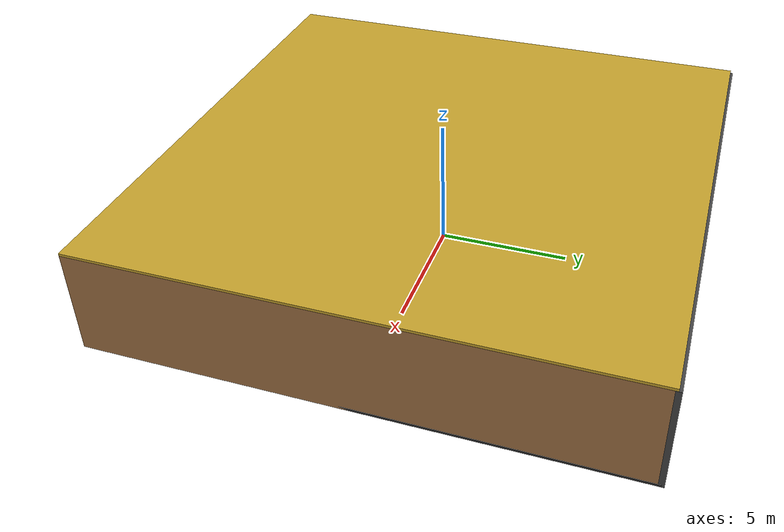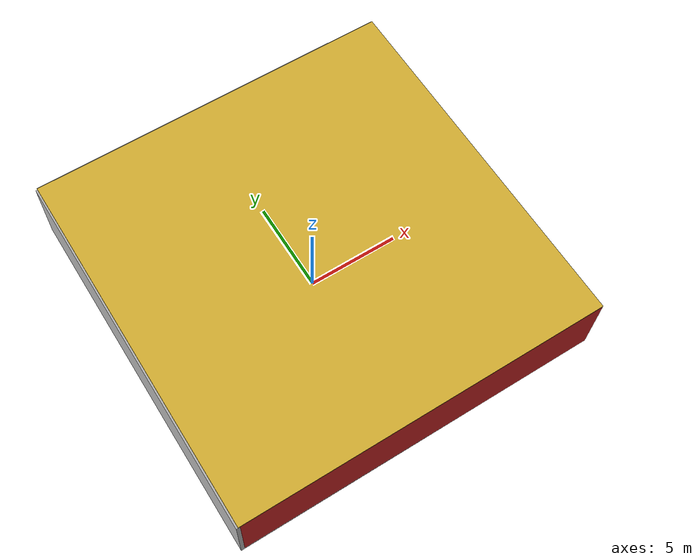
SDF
<sdf version="1.4">
 <world name="default">
  <physics type="ode">
   <max_step_size>0.001</max_step_size>
   <real_time_factor>1</real_time_factor>
   <real_time_update_rate>1000</real_time_update_rate>
   <gravity>0 0 -9.8</gravity>
  </physics>
  <scene><ambient>0.4 0.4 0.4 1</ambient><background>0.7 0.7 0.7 1</background><shadows>1</shadows></scene>
  <model name="Surrounding">
   <static>1</static>
   <link name="Ceiling">
    <collision name="Ceiling_Collision"><geometry><box><size>20 20 0.1</size></box></geometry></collision>
    <visual name="Ceiling_Visual">
     <geometry><box><size>20 20 0.1</size></box></geometry>
     <material>
      <script><uri>file://media/materials/scripts/gazebo.material</uri><name>Gazebo/Gold</name></script>
     </material>
    </visual>
    <pose>0 0 4.05 0 0 0</pose>
   </link>
   <link name="Wall_South">
    <collision name="Wall_South_Collision">
     <geometry><box><size>20 0 4</size></box></geometry>
     <pose>0 0 2 0 -0 0</pose>
    </collision>
    <visual name="Wall_South_Visual">
     <pose>0 0 2 0 -0 0</pose>
     <geometry><box><size>20 0 4</size></box></geometry>
     <material>
      <script><uri>file://media/materials/scripts/gazebo.material</uri><name>Gazebo/Red</name></script>
     </material>
    </visual>
    <velocity_decay><linear>0</linear><angular>0</angular></velocity_decay>
    <pose>0 -10 0 0 -0 0</pose>
   </link>
   <link name="Wall_East">
    <collision name="Wall_21_Collision">
     <geometry><box><size>20 0 4</size></box></geometry>
     <pose>0 0 2 0 -0 0</pose>
    </collision>
    <visual name="Wall_21_Visual">
     <pose>0 0 2 0 -0 0</pose>
     <geometry><box><size>20 0 4</size></box></geometry>
     <material>
      <script><uri>file://media/materials/scripts/gazebo.material</uri><name>Gazebo/WoodPallet</name></script>
     </material>
    </visual>
    <velocity_decay><linear>0</linear><angular>0</angular></velocity_decay>
    <pose>10 0 0 0 -0 1.5708</pose>
   </link>
   <link name="Wall_North">
    <collision name="Wall_22_Collision">
     <geometry><box><size>20 0.2 4</size></box></geometry>
     <pose>0 0 2 0 -0 0</pose>
    </collision>
    <visual name="Wall_22_Visual">
     <pose>0 0 2 0 -0 0</pose>
     <geometry><box><size>20 0.2 4</size></box></geometry>
     <material>
      <script><uri>file://media/materials/scripts/gazebo.material</uri><name>Gazebo/DarkGrey</name></script>
     </material>
    </visual>
    <velocity_decay><linear>0</linear><angular>0</angular></velocity_decay>
    <pose>0 10 0 0 -0 0</pose>
   </link>
   <link name="Wall_West">
    <collision name="Wall_23_Collision">
     <geometry><box><size>20 0.2 4</size></box></geometry>
     <pose>0 0 2 0 -0 0</pose>
    </collision>
    <visual name="Wall_23_Visual">
     <pose>0 0 2 0 -0 0</pose>
     <geometry><box><size>20 0.2 4</size></box></geometry>
     <material>
      <script><uri>file://media/materials/scripts/gazebo.material</uri><name>Gazebo/LightOn</name></script>
     </material>
    </visual>
    <velocity_decay><linear>0</linear><angular>0</angular></velocity_decay>
    <pose>-10 0 0 0 0 -1.5708</pose>
   </link>
   <link name="Ground_link">
    <collision name="collision">
     <pose>0 0 .05 0 -0 0</pose>
     <geometry><box><size>20 20 0.1</size></box></geometry>
    </collision>
    <visual name="visual">
     <pose>0 0 .05 0 -0 0</pose>
     <geometry><box><size>20 20 0.1</size></box></geometry>
     <material>
      <script><uri>file://media/materials/scripts/gazebo.material</uri><name>Gazebo/FlatBlack</name></script>
     </material>
    </visual>
   </link>
   <static>1</static>
  </model>
  <spherical_coordinates>
   <surface_model>EARTH_WGS84</surface_model>
   <latitude_deg>0</latitude_deg>
   <longitude_deg>0</longitude_deg>
   <elevation>0</elevation>
   <heading_deg>0</heading_deg>
  </spherical_coordinates>
  <light name="lightball_0" type="diffuse">
   <diffuse>0.8 0.8 0.8 1</diffuse>
   <specular>0.2 0.2 0.2 1</specular>
   <attenuation>
    <range>100</range>
    <constant>0.7</constant>
    <linear>0.01</linear>
    <quadratic>0.001</quadratic>
   </attenuation>
   <direction>-0.5 0.1 -0.9</direction>
   <pose>-1.69911680762 1.40106821838 1.02964272838 0 0 0</pose>
  </light>
  <light name="lightball_1" type="diffuse">
   <diffuse>0.8 0.8 0.8 1</diffuse>
   <specular>0.2 0.2 0.2 1</specular>
   <attenuation>
    <range>100</range>
    <constant>0.7</constant>
    <linear>0.01</linear>
    <quadratic>0.001</quadratic>
   </attenuation>
   <direction>-0.5 0.1 -0.9</direction>
   <pose>9.65798864196 -5.66195524673 0.565607119742 0 0 0</pose>
  </light>
  <light name="lightball_2" type="diffuse">
   <diffuse>0.8 0.8 0.8 1</diffuse>
   <specular>0.2 0.2 0.2 1</specular>
   <attenuation>
    <range>100</range>
    <constant>0.7</constant>
    <linear>0.01</linear>
    <quadratic>0.001</quadratic>
   </attenuation>
   <direction>-0.5 0.1 -0.9</direction>
   <pose>-1.33985589037 8.98447237921 1.95055893496 0 0 0</pose>
  </light>
  <include><uri>model://cabinet</uri><pose>-4.76279744454 -3.56784595902 0 0 0 2.01468131863</pose></include>
  <include><uri>model://table</uri><pose>-0.620803932877 -4.6316286183 0 0 0 1.57014227705</pose></include>
  <include><uri>model://cabinet</uri><pose>-1.90712259639 2.63095738137 0 0 0 3.05183423099</pose></include>
  <include>
   <uri>model://robocup_3Dsim_goal</uri>
   <pose>-0.962910864199 6.71211442064 0 0 0 0.0536711460529</pose>
  </include>
  <include>
   <uri>model://robocup_3Dsim_goal</uri>
   <pose>6.47516748582 -4.34436091508 0 0 0 2.78566576197</pose>
  </include>
  <include><uri>model://cabinet</uri><pose>6.45842934574 0.504833865547 0 0 0 2.3820741802</pose></include>
 </world>
</sdf>

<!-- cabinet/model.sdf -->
<sdf version="1.5">
  <model name="cabinet">
    <static>true</static>
    <link name="cabinet_bottom_plate">
      <inertial>
        <pose>0 0 -1 0 0 0</pose>
        <inertia>
          <ixx>2.050000</ixx>
          <ixy>0</ixy>
          <ixz>0</ixz>
          <iyy>2.050000</iyy>
          <iyz>0</iyz>
          <izz>2.050000</izz>
        </inertia>
        <mass>25.000000</mass>
      </inertial>
      <collision name="cabinet_bottom_plate_geom">
        <pose>0 0 0.010000 0 0 0</pose>
        <geometry>
          <box>
            <size>0.450000 0.450000 0.020000</size>
          </box>
        </geometry>
      </collision>
      <visual name="cabinet_bottom_plate_geom_visual">
        <pose>0 0 0.010000 0 0 0</pose>
        <geometry>
          <box>
            <size>0.450000 0.450000 0.020000</size>
          </box>
        </geometry>
        <material>
          <script>
            <uri>model://media/materials/scripts/gazebo.material</uri>
            <name>Gazebo/Wood</name>
          </script>
        </material>
      </visual>
      <collision name="cabinet_bottom_plate_geom_cabinet_back_plate">
        <pose>0.235000 0 0.510000 0 0 0</pose>
        <geometry>
          <box>
            <size>0.020000 0.450000 1.020000</size>
          </box>
        </geometry>
      </collision>
      <visual name="cabinet_bottom_plate_geom_cabinet_back_plate_visual">
        <pose>0.235000 0 0.510000 0 0 0</pose>
        <geometry>
          <box>
            <size>0.020000 0.450000 1.020000</size>
          </box>
        </geometry>
        <material>
          <script>
            <uri>model://media/materials/scripts/gazebo.material</uri>
            <name>Gazebo/Wood</name>
          </script>
        </material>
      </visual>
      <collision name="cabinet_bottom_plate_geom_cabinet_left_plate">
        <pose>0 0.235000 0.510000 0 0 0</pose>
        <geometry>
          <box>
            <size>0.450000 0.020000 1.020000</size>
          </box>
        </geometry>
      </collision>
      <visual name="cabinet_bottom_plate_geom_cabinet_left_plate_visual">
        <pose>0 0.235000 0.510000 0 0 0</pose>
        <geometry>
          <box>
            <size>0.450000 0.020000 1.020000</size>
          </box>
        </geometry>
        <material>
          <script>
            <uri>model://media/materials/scripts/gazebo.material</uri>
            <name>Gazebo/Wood</name>
          </script>
        </material>
      </visual>
      <collision name="cabinet_bottom_plate_geom_cabinet_middle_plate">
        <pose>0 0 0.510000 0 0 0</pose>
        <geometry>
          <box>
            <size>0.450000 0.450000 0.020000</size>
          </box>
        </geometry>
      </collision>
      <visual name="cabinet_bottom_plate_geom_cabinet_middle_plate_visual">
        <pose>0 0 0.510000 0 0 0</pose>
        <geometry>
          <box>
            <size>0.450000 0.450000 0.020000</size>
          </box>
        </geometry>
        <material>
          <script>
            <uri>model://media/materials/scripts/gazebo.material</uri>
            <name>Gazebo/Wood</name>
          </script>
        </material>
      </visual>
      <collision name="cabinet_bottom_plate_geom_cabinet_right_plate">
        <pose>0 -0.235000 0.510000 0 0 0</pose>
        <geometry>
          <box>
            <size>0.450000 0.020000 1.020000</size>
          </box>
        </geometry>
      </collision>
      <visual name="cabinet_bottom_plate_geom_cabinet_right_plate_visual">
        <pose>0 -0.235000 0.510000 0 0 0</pose>
        <geometry>
          <box>
            <size>0.450000 0.020000 1.020000</size>
          </box>
        </geometry>
        <material>
          <script>
            <uri>model://media/materials/scripts/gazebo.material</uri>
            <name>Gazebo/Wood</name>
          </script>
        </material>
      </visual>
      <collision name="cabinet_bottom_plate_geom_cabinet_top_plate">
        <pose>0 0 1.010000 0 0 0</pose>
        <geometry>
          <box>
            <size>0.450000 0.450000 0.020000</size>
          </box>
        </geometry>
      </collision>
      <visual name="cabinet_bottom_plate_geom_cabinet_top_plate_visual">
        <pose>0 0 1.010000 0 0 0</pose>
        <geometry>
          <box>
            <size>0.450000 0.450000 0.020000</size>
          </box>
        </geometry>
        <material>
          <script>
            <uri>model://media/materials/scripts/gazebo.material</uri>
            <name>Gazebo/Wood</name>
          </script>
        </material>
      </visual>
    </link>
  </model>
</sdf>

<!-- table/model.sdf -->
<sdf version="1.5">
  <model name="table">
    <static>true</static>
    <link name="link">
      <collision name="surface">
        <pose>0 0 1.0 0 0 0</pose>
        <geometry>
          <box>
            <size>1.5 0.8 0.03</size>
          </box>
        </geometry>
        <surface>
          <friction>
            <ode>
              <mu>0.6</mu>
              <mu2>0.6</mu2>
            </ode>
          </friction>
        </surface>
      </collision>
      <visual name="visual1">
        <pose>0 0 1.0 0 0 0</pose>
        <geometry>
          <box>
            <size>1.5 0.8 0.03</size>
          </box>
        </geometry>
        <material>
          <script>
            <uri>model://media/materials/scripts/gazebo.material</uri>
            <name>Gazebo/Wood</name>
          </script>
        </material>
      </visual>
      <collision name="front_left_leg">
        <pose>0.68 0.38 0.5 0 0 0</pose>
        <geometry>
          <cylinder>
            <radius>0.02</radius>
            <length>1.0</length>
          </cylinder>
        </geometry>
      </collision>
      <visual name="front_left_leg">
        <pose>0.68 0.38 0.5 0 0 0</pose>
        <geometry>
          <cylinder>
            <radius>0.02</radius>
            <length>1.0</length>
          </cylinder>
        </geometry>
        <material>
          <script>
            <uri>model://media/materials/scripts/gazebo.material</uri>
            <name>Gazebo/Grey</name>
          </script>
        </material>
      </visual>
      <collision name="front_right_leg">
        <pose>0.68 -0.38 0.5 0 0 0</pose>
        <geometry>
          <cylinder>
            <radius>0.02</radius>
            <length>1.0</length>
          </cylinder>
        </geometry>
      </collision>
      <visual name="front_right_leg">
        <pose>0.68 -0.38 0.5 0 0 0</pose>
        <geometry>
          <cylinder>
            <radius>0.02</radius>
            <length>1.0</length>
          </cylinder>
        </geometry>
        <material>
          <script>
            <uri>model://media/materials/scripts/gazebo.material</uri>
            <name>Gazebo/Grey</name>
          </script>
        </material>
      </visual>
      <collision name="back_right_leg">
        <pose>-0.68 -0.38 0.5 0 0 0</pose>
        <geometry>
          <cylinder>
            <radius>0.02</radius>
            <length>1.0</length>
          </cylinder>
        </geometry>
      </collision>
      <visual name="back_right_leg">
        <pose>-0.68 -0.38 0.5 0 0 0</pose>
        <geometry>
          <cylinder>
            <radius>0.02</radius>
            <length>1.0</length>
          </cylinder>
        </geometry>
        <material>
          <script>
            <uri>model://media/materials/scripts/gazebo.material</uri>
            <name>Gazebo/Grey</name>
          </script>
        </material>
      </visual>
      <collision name="back_left_leg">
        <pose>-0.68 0.38 0.5 0 0 0</pose>
        <geometry>
          <cylinder>
            <radius>0.02</radius>
            <length>1.0</length>
          </cylinder>
        </geometry>
      </collision>
      <visual name="back_left_leg">
        <pose>-0.68 0.38 0.5 0 0 0</pose>
        <geometry>
          <cylinder>
            <radius>0.02</radius>
            <length>1.0</length>
          </cylinder>
        </geometry>
        <material>
          <script>
            <uri>model://media/materials/scripts/gazebo.material</uri>
            <name>Gazebo/Grey</name>
          </script>
        </material>
      </visual>
    </link>
  </model>
</sdf>

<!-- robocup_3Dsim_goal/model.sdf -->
<sdf version="1.5">
  <model name="robocup_3d_goal">
    <static>true</static>
    <link name="left_post">
      <pose>0 1.05 0.45 0 0 0</pose>
      <collision name="collision">
        <geometry>
          <cylinder>
            <radius>0.05</radius>
            <length>0.9</length>
          </cylinder>
        </geometry>
      </collision>
      <visual name="visual">
        <geometry>
          <cylinder>
            <radius>0.05</radius>
            <length>0.9</length>
          </cylinder>
        </geometry>
        <material>
          <script>
            <uri>file://media/materials/scripts/gazebo.material</uri>
            <name>Gazebo/ZincYellow</name>
          </script>
        </material>
      </visual>
    </link>
    <link name="left_support_horiz_lower">
      <pose>0.30 1.05 0.01 0 0 0</pose>
      <collision name="collision">
        <geometry>
          <box>
            <size>0.50 0.02 0.02</size>
          </box>
        </geometry>
      </collision>
      <visual name="visual">
        <geometry>
          <box>
            <size>0.50 0.02 0.02</size>
          </box>
        </geometry>
        <material>
          <script>
            <uri>file://media/materials/scripts/gazebo.material</uri>
            <name>Gazebo/White</name>
          </script>
        </material>
      </visual>
    </link>
    <link name="left_support_horiz_upper">
      <pose>0.30 1.05 0.79 0 0 0</pose>
      <collision name="collision">
        <geometry>
          <box>
            <size>0.50 0.02 0.02</size>
          </box>
        </geometry>
      </collision>
      <visual name="visual">
        <geometry>
          <box>
            <size>0.50 0.02 0.02</size>
          </box>
        </geometry>
        <material>
          <script>
            <uri>file://media/materials/scripts/gazebo.material</uri>
            <name>Gazebo/White</name>
          </script>
        </material>
      </visual>
    </link>
    <link name="left_support_vertical">
      <pose>0.56 1.05 0.4 0 1.5708 0</pose>
      <collision name="collision">
        <geometry>
          <box>
            <size>0.80 0.02 0.02</size>
          </box>
        </geometry>
      </collision>
      <visual name="visual">
        <geometry>
          <box>
            <size>0.80 0.02 0.02</size>
          </box>
        </geometry>
        <material>
          <script>
            <uri>file://media/materials/scripts/gazebo.material</uri>
            <name>Gazebo/White</name>
          </script>
        </material>
      </visual>
    </link>
    <link name="right_support_horiz_lower">
      <pose>0.30 -1.05 0.01 0 0 0</pose>
      <collision name="collision">
        <geometry>
          <box>
            <size>0.50 0.02 0.02</size>
          </box>
        </geometry>
      </collision>
      <visual name="visual">
        <geometry>
          <box>
            <size>0.50 0.02 0.02</size>
          </box>
        </geometry>
        <material>
          <script>
            <uri>file://media/materials/scripts/gazebo.material</uri>
            <name>Gazebo/White</name>
          </script>
        </material>
      </visual>
    </link>
    <link name="right_support_horiz_upper">
      <pose>0.30 -1.05 0.79 0 0 0</pose>
      <collision name="collision">
        <geometry>
          <box>
            <size>0.50 0.02 0.02</size>
          </box>
        </geometry>
      </collision>
      <visual name="visual">
        <geometry>
          <box>
            <size>0.50 0.02 0.02</size>
          </box>
        </geometry>
        <material>
          <script>
            <uri>file://media/materials/scripts/gazebo.material</uri>
            <name>Gazebo/White</name>
          </script>
        </material>
      </visual>
    </link>
    <link name="right_support_vertical">
      <pose>0.56 -1.05 0.4 0 1.5708 0</pose>
      <collision name="collision">
        <geometry>
          <box>
            <size>0.80 0.02 0.02</size>
          </box>
        </geometry>
      </collision>
      <visual name="visual">
        <geometry>
          <box>
            <size>0.80 0.02 0.02</size>
          </box>
        </geometry>
        <material>
          <script>
            <uri>file://media/materials/scripts/gazebo.material</uri>
            <name>Gazebo/White</name>
          </script>
        </material>
      </visual>
    </link>
    <link name="center_support_horiz_lower">
      <pose>0.56 0 0.01 0 1.5708 0</pose>
      <collision name="collision">
        <geometry>
          <box>
            <size>0.02 2.08 0.02</size>
          </box>
        </geometry>
      </collision>
      <visual name="visual">
        <geometry>
          <box>
            <size>0.02 2.08 0.02</size>
          </box>
        </geometry>
        <material>
          <script>
            <uri>file://media/materials/scripts/gazebo.material</uri>
            <name>Gazebo/White</name>
          </script>
        </material>
      </visual>
    </link>
    <link name="center_support_horiz_upper">
      <pose>0.56 0 0.79 0 1.5708 0</pose>
      <collision name="collision">
        <geometry>
          <box>
            <size>0.02 2.08 0.02</size>
          </box>
        </geometry>
      </collision>
      <visual name="visual">
        <geometry>
          <box>
            <size>0.02 2.08 0.02</size>
          </box>
        </geometry>
        <material>
          <script>
            <uri>file://media/materials/scripts/gazebo.material</uri>
            <name>Gazebo/White</name>
          </script>
        </material>
      </visual>
    </link>
    <link name="right_post">
      <pose>0 -1.05 0.45 0 0 0</pose>
      <collision name="collision">
        <geometry>
          <cylinder>
            <radius>0.05</radius>
            <length>0.9</length>
          </cylinder>
        </geometry>
      </collision>
      <visual name="visual">
        <geometry>
          <cylinder>
            <radius>0.05</radius>
            <length>0.9</length>
          </cylinder>
        </geometry>
        <material>
          <script>
            <uri>file://media/materials/scripts/gazebo.material</uri>
            <name>Gazebo/ZincYellow</name>
          </script>
        </material>
      </visual>
    </link>
    <link name="crossbar">
      <pose>0 0 0.85 1.57 1.57 0</pose>
      <collision name="collision">
        <geometry>
          <cylinder>
            <radius>0.05</radius>
            <length>2.0</length>
          </cylinder>
        </geometry>
      </collision>
      <visual name="visual">
        <geometry>
          <cylinder>
            <radius>0.05</radius>
            <length>2.0</length>
          </cylinder>
        </geometry>
        <material>
          <script>
            <uri>file://media/materials/scripts/gazebo.material</uri>
            <name>Gazebo/ZincYellow</name>
          </script>
        </material>
      </visual>
    </link>
    <link name="center_net">
      <pose>0.56 0 0.40 0 0 0</pose>
      <collision name="collision">
        <geometry>
          <box>
            <size>0.01 2.1 0.80</size>
          </box>
        </geometry>
      </collision>
      <visual name="visual">
        <geometry>
          <box>
            <size>0.01 2.1 0.80</size>
          </box>
        </geometry>
        <material>
          <script>
            <uri>model://../model_source/models/robocup09_spl_field/materials/scripts/</uri>
            <uri>model://../model_source/models/robocup09_spl_field/materials/textures/</uri>
            <name>RoboCup/Net</name>
          </script>
        </material>
      </visual>
    </link>
    <link name="left_net">
      <pose>0.30 1.05 0.40 0 0 0</pose>
      <collision name="collision">
        <geometry>
          <box>
            <size>0.50 0.01 0.76</size>
          </box>
        </geometry>
      </collision>
      <visual name="visual">
        <geometry>
          <box>
            <size>0.50 0.01 0.76</size>
          </box>
        </geometry>
        <material>
          <script>
            <uri>model://../model_source/models/robocup09_spl_field/materials/scripts/</uri>
            <uri>model://../model_source/models/robocup09_spl_field/materials/textures/</uri>
            <name>RoboCup/Net</name>
          </script>
        </material>
      </visual>
    </link>
    <link name="right_net">
      <pose>0.30 -1.05 0.40 0 0 0</pose>
      <collision name="collision">
        <geometry>
          <box>
            <size>0.50 0.01 0.76</size>
          </box>
        </geometry>
      </collision>
      <visual name="visual">
        <geometry>
          <box>
            <size>0.50 0.01 0.76</size>
          </box>
        </geometry>
        <material>
          <script>
            <uri>model://../model_source/models/robocup09_spl_field/materials/scripts/</uri>
            <uri>model://../model_source/models/robocup09_spl_field/materials/textures/</uri>
            <name>RoboCup/Net</name>
          </script>
        </material>
      </visual>
    </link>
  </model>
</sdf>
